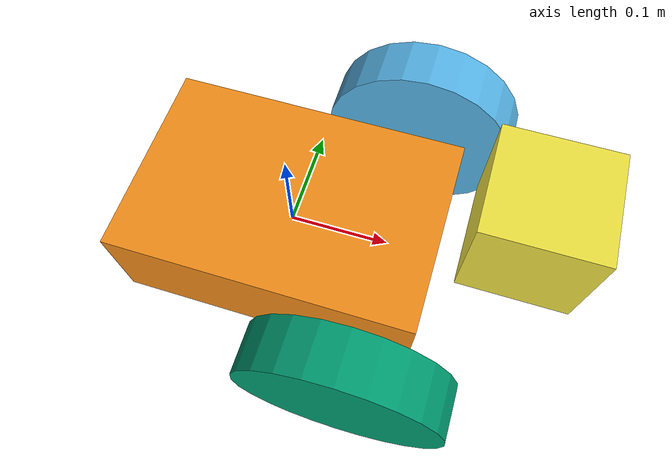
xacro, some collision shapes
<?xml version='1.0'?>

<robot name="myrobot" xmlns:xacro="http://www.ros.org/wiki/xacro">

  <xacro:include filename="$(find mybot_description)/urdf/mybot.gazebo" />

  <link name='chassis'>
    <pose>0 0 0.1 0 0 0</pose>

    <inertial>
      <mass value="10.0"/>
      <origin xyz="0.0 0 0.1" rpy=" 0 0 0"/>
      <inertia
          ixx="0.5" ixy="0" ixz="0"
          iyy="1.0" iyz="0"
          izz="0.1"
      />
    </inertial>

    <collision name='collision'>
      <geometry>
        <box size=".3 .2 .1"/>
      </geometry>
    </collision>

    <visual name='chassis_visual'>
      <origin xyz="0 0 0" rpy=" 0 0 0"/>
      <geometry>
        <box size=".3 .2 .1"/>
      </geometry>
    </visual>

    <collision name='caster_collision'>
      <origin xyz="-0.11 0 -0.05" rpy=" 0 0 0"/>
      <geometry>
        <sphere radius="0.05096"/>
      </geometry>
      <surface>
        <friction>
          <ode>
            <mu>0</mu>
            <mu2>0</mu2>
            <slip1>1.0</slip1>
            <slip2>1.0</slip2>
          </ode>
        </friction>
      </surface>
    </collision>

    <visual name='caster_visual'>
      <origin xyz="-0.11 0 -0.05" rpy=" 0 0 0"/>
      <geometry>
        <sphere radius="0.05096"/>
      </geometry>
    </visual>

  </link>

  <link name="left_wheel">
    <!--origin xyz="0.1 0.13 0.1" rpy="0 1.5707 1.5707"/-->
    <collision name="collision">
      <origin xyz="0 0 0" rpy="0 1.5707 1.5707"/>
      <geometry>
        <cylinder radius="0.1" length="0.05"/>
      </geometry>
    </collision>
    <visual name="left_wheel_visual">
      <origin xyz="0 0 0" rpy="0 1.5707 1.5707"/>
      <geometry>
        <cylinder radius="0.1" length="0.05"/>
      </geometry>
    </visual>
    <inertial>
      <origin xyz="0 0 0" rpy="0 1.5707 1.5707"/>
      <mass value="5"/>
      <cylinder_inertia m="5" r="0.1" h="0.05"/>
      <inertia
        ixx="1.0" ixy="0.0" ixz="0.0"
        iyy="1.0" iyz="0.0"
        izz="1.0"/>
    </inertial>
  </link>

  <link name="right_wheel">
    <!--origin xyz="0.1 -0.13 0.1" rpy="0 1.5707 1.5707"/-->
    <collision name="collision">
      <origin xyz="0 0 0" rpy="0 1.5707 1.5707"/>
      <geometry>
        <cylinder radius="0.1" length="0.05"/>
      </geometry>
    </collision>
    <visual name="right_wheel_visual">
      <origin xyz="0 0 0" rpy="0 1.5707 1.5707"/>
      <geometry>
        <cylinder radius="0.1" length="0.05"/>
      </geometry>
    </visual>
    <inertial>
      <origin xyz="0 0 0" rpy="0 1.5707 1.5707"/>
      <mass value="5"/>
      <cylinder_inertia m="5" r="0.1" h="0.05"/>
      <inertia
        ixx="1.0" ixy="0.0" ixz="0.0"
        iyy="1.0" iyz="0.0"
        izz="1.0"/>
    </inertial>
  </link>

   <!-- Hokuyo Laser -->
  <link name="hokuyo_link">
    <collision>
      <origin xyz="0.11 0.001 0.055" rpy="0 0 0"/>
      <geometry>
    <box size="0.1 0.1 0.1"/>
      </geometry>
    </collision>

    <visual>
      <origin xyz="0.11 0.001 0.055" rpy="0 0 0"/>
      <geometry>
        <mesh filename="package://mybot_description/meshes/hokuyo.dae"/>
      </geometry>
    </visual>

    <inertial>
      <mass value="1e-5" />
       <origin xyz="0.11 0.001 0.055" rpy="0 0 0"/>
      <inertia ixx="1e-6" ixy="0" ixz="0" iyy="1e-6" iyz="0" izz="1e-6" />
    </inertial>
  </link>

  <joint name="hokuyo_joint" type="fixed">
    <axis xyz="0 1 0" />
    <origin xyz="0.11 0.001 0.055" rpy="0 0 0"/>
    <parent link="chassis"/>
    <child link="hokuyo_link"/>
  </joint>

  <joint type="continuous" name="left_wheel_hinge">
    <origin xyz="0.1 0.15 0" rpy="0 0 0"/>
    <child link="left_wheel"/>
    <parent link="chassis"/>
    <axis xyz="0 1 0" rpy="0 0 0"/>
    <limit effort="100" velocity="100"/>
    <joint_properties damping="0.0" friction="0.0"/>
  </joint>

  <joint type="continuous" name="right_wheel_hinge">
    <origin xyz="0.1 -0.15 0" rpy="0 0 0"/>
    <child link="right_wheel"/>
    <parent link="chassis"/>
    <axis xyz="0 1 0" rpy="0 0 0"/>
    <limit effort="100" velocity="100"/>
    <joint_properties damping="0.0" friction="0.0"/>
  </joint>

</robot>
